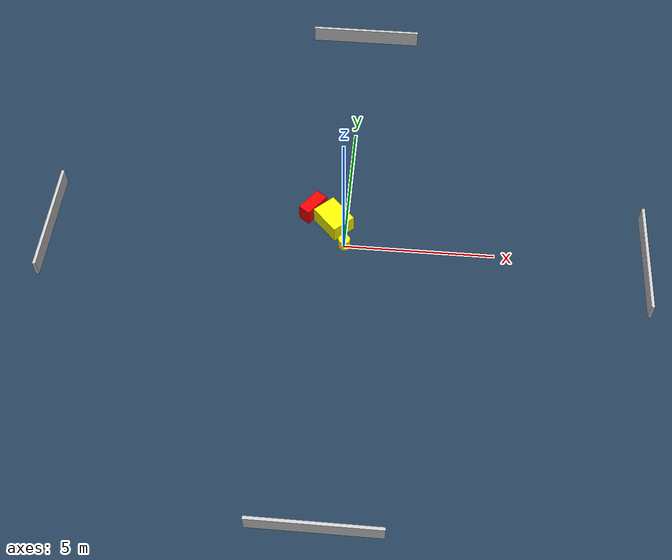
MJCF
<?xml version="1.0" ?>
<mujoco model="generated_environment">
  <option timestep="0.01" integrator="RK4" cone="elliptic"/>
  <default>
    <geom density="1"/>
  </default>
  <asset>
    <texture builtin="gradient" height="3072" name="skybox" rgb1="0.3 0.5 0.7" rgb2="0 0 0" type="skybox" width="512"/>
    <texture builtin="checker" height="300" name="groundplane" rgb1="0.2 0.3 0.4" rgb2="0.1 0.2 0.3" type="2d" width="300"/>
    <material name="groundplane" reflectance="0.2" texrepeat="5 5" texture="groundplane"/>
  </asset>
  <worldbody>
    <light dir="0 0 -1" directional="true" pos="0 0 1.5"/>
    <geom condim="3" friction="0.5 0.005 0.001" material="groundplane" name="floor" pos="0 0 0" size="0 0 0.05" type="plane"/>
    <body name="walls">
      <geom name="wall_1" condim="4" pos="-10.0 0.0 0.3" rgba="0.800000011920929 0.800000011920929 0.800000011920929 1.0" size="0.05 2.0 0.3" type="box"/>
      <geom name="wall_2" condim="4" pos="10.0 0.0 0.3" rgba="0.800000011920929 0.800000011920929 0.800000011920929 1.0" size="0.05 2.0 0.3" type="box"/>
      <geom name="wall_3" condim="4" pos="0.0 -10.0 0.3" rgba="0.800000011920929 0.800000011920929 0.800000011920929 1.0" size="2.0 0.05 0.3" type="box"/>
      <geom name="wall_4" condim="4" pos="0.0 10.0 0.3" rgba="0.800000011920929 0.800000011920929 0.800000011920929 1.0" size="2.0 0.05 0.3" type="box"/>
    </body>
    <body name="robot">
      <joint name="joint_x" type="slide" pos="0 0 0" axis="1 0 0"/>
      <joint name="joint_y" type="slide" pos="0 0 0" axis="0 1 0"/>
      <geom name="robot" type="cylinder" pos="0.0 0.0 0.2" size="0.2 0.2 0.0" mass="5.0" friction="1.0 0.005 0.0001" condim="4" rgba="1.0 1.0 0.0 1.0"/>
    </body>
    <body name="obstacle_1_movable">
      <geom name="obstacle_1_movable" condim="4" pos="-0.42979096785883364 0.8966483648204338 0.3" euler="0 0 132.97836196681857" friction="0.0 0.005 0.001" rgba="1.0 1.0 0.0 1.0" size="0.5670748138715452 0.42522681993535394 0.3" type="box" mass="0.1"/>
      <joint type="free"/>
    </body>
    <body name="obstacle_2_static">
      <geom name="obstacle_2_static" condim="4" pos="-1.1847896697336822 1.3378344078742348 0.3" euler="0 0 143.76266165768322" friction="0.0 0.005 0.001" rgba="1.0 0.0 0.0 1.0" size="0.21505632639547984 0.46155092946991205 0.3" type="box"/>
    </body>
  </worldbody>
  <actuator>
    <motor name="actuator_x" joint="joint_x" gear="1" ctrlrange="-1 1"/>
    <motor name="actuator_y" joint="joint_y" gear="1" ctrlrange="-1 1"/>
  </actuator>
</mujoco>
